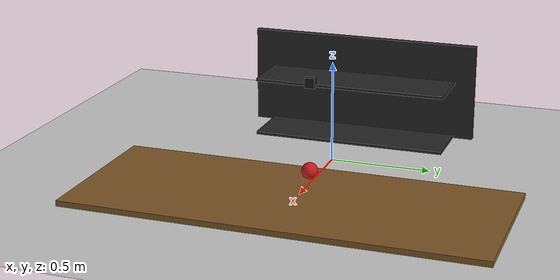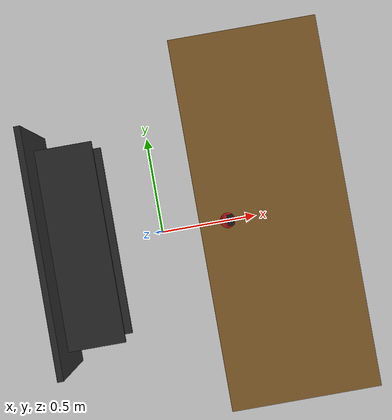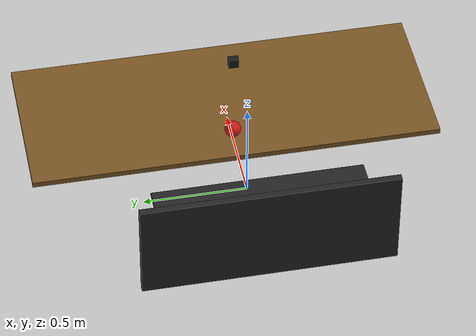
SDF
<sdf version='1.12'>
  <world name='empty'>
    <physics name='1ms' type='ignored'>
      <max_step_size>0.001</max_step_size>
      <real_time_factor>1</real_time_factor>
      <real_time_update_rate>1000</real_time_update_rate>
    </physics>
    <plugin name='gz::sim::systems::Physics' filename='gz-sim-physics-system'/>
    <plugin name='gz::sim::systems::UserCommands' filename='gz-sim-user-commands-system'/>
    <plugin name='gz::sim::systems::SceneBroadcaster' filename='gz-sim-scene-broadcaster-system'/>
    <plugin name='gz::sim::systems::Contact' filename='gz-sim-contact-system'/>
    <plugin name='gz::sim::systems::Sensors' filename='gz-sim-sensors-system'>
      <render_engine>ogre2</render_engine>
    </plugin>
    <gravity>0 0 -9.8000000000000007</gravity>
    <magnetic_field>5.5644999999999998e-06 2.2875799999999999e-05 -4.2388400000000002e-05</magnetic_field>
    <atmosphere type='adiabatic'/>
    <scene>
      <ambient>0.400000006 0.400000006 0.400000006 1</ambient>
      <background>0.699999988 0.699999988 0.699999988 1</background>
      <shadows>true</shadows>
    </scene>
    <model name='ground_plane'>
      <static>true</static>
      <link name='link'>
        <collision name='collision'>
          <geometry>
            <plane>
              <normal>0 0 1</normal>
              <size>100 100</size>
            </plane>
          </geometry>
          <surface>
            <friction>
              <ode/>
            </friction>
            <bounce/>
            <contact/>
          </surface>
        </collision>
        <visual name='visual'>
          <geometry>
            <plane>
              <normal>0 0 1</normal>
              <size>100 100</size>
            </plane>
          </geometry>
          <material>
            <ambient>0.800000012 0.800000012 0.800000012 1</ambient>
            <diffuse>0.800000012 0.800000012 0.800000012 1</diffuse>
            <specular>0.800000012 0.800000012 0.800000012 1</specular>
          </material>
        </visual>
        <pose>0 0 0 0 0 0</pose>
        <inertial>
          <pose>0 0 0 0 0 0</pose>
          <mass>1</mass>
          <inertia>
            <ixx>1</ixx>
            <ixy>0</ixy>
            <ixz>0</ixz>
            <iyy>1</iyy>
            <iyz>0</iyz>
            <izz>1</izz>
          </inertia>
        </inertial>
        <enable_wind>false</enable_wind>
      </link>
      <pose>0 0 0 0 0 0</pose>
      <self_collide>false</self_collide>
    </model>
    <light name='sun' type='directional'>
      <pose>0 0 10 0 0 0</pose>
      <cast_shadows>true</cast_shadows>
      <intensity>1</intensity>
      <direction>-0.5 0.10000000000000001 -0.90000000000000002</direction>
      <diffuse>0.800000012 0.800000012 0.800000012 1</diffuse>
      <specular>0.200000003 0.200000003 0.200000003 1</specular>
      <attenuation>
        <range>1000</range>
        <linear>0.01</linear>
        <constant>0.90000000000000002</constant>
        <quadratic>0.001</quadratic>
      </attenuation>
      <spot>
        <inner_angle>0</inner_angle>
        <outer_angle>0</outer_angle>
        <falloff>0</falloff>
      </spot>
    </light>
    <model name='table'>
      <static>true</static>
      <pose>0.6 0 0 0 0 0</pose>
      <link name="tabletop">
        <pose>0 0 0 0 0 0</pose>
        <collision name="collision">
          <geometry>
            <box>
              <size>0.8 2 0.05</size>
            </box>
          </geometry>
        </collision>
        <visual name="visual">
          <geometry>
            <box>
              <size>0.8 2 0.05</size>
            </box>
          </geometry>
          <material>
            <ambient>0.5 0.35 0.15 1</ambient>
            <diffuse>0.5 0.35 0.15 1</diffuse>
          </material>
        </visual>
      </link>
    </model>
    <model name="apple">
      <static>false</static>
      <pose>0.35 0 0.065 0 0 0</pose>
      <link name="apple_link">
        <collision name="collision">
          <geometry>
            <sphere>
              <radius>0.04</radius>
            </sphere>
          </geometry>
        </collision>
        <visual name="visual">
          <geometry>
            <sphere>
              <radius>0.04</radius>
            </sphere>
          </geometry>
          <material>
            <ambient>0.8 0.1 0.1 1</ambient>
            <diffuse>0.8 0.1 0.1 1</diffuse>
          </material>
        </visual>
        <inertial>
          <mass>0.15</mass>
          <inertia>
            <ixx>0.000096</ixx>
            <iyy>0.000096</iyy>
            <izz>0.000096</izz>
            <ixy>0</ixy>
            <ixz>0</ixz>
            <iyz>0</iyz>
          </inertia>
        </inertial>
      </link>
    </model>

    <model name='shelf'>
      <static>true</static>

      <!-- Model origin is at floor level, centered on the shelf -->
      <!-- TO MOVE THE SHELF: edit x (forward/back) and y (left/right) here -->
      <pose>-0.55 0 0 0 0 0</pose>

      <!-- BACK PANEL — the tall vertical back wall of the shelf -->
      <!-- TO ADJUST: change size to make it wider (y), taller (z), or thicker (x) -->
      <link name='back_panel'>
        <!-- z=0.125 centers the panel vertically (panel is 0.25m tall, so center is at 0.125m) -->
        <!-- TO ADJUST HEIGHT: change z here to half of whatever the panel height is -->
        <pose>0 0 0.25 0 0 0</pose>
        <collision name='collision'>
          <geometry>
            <!-- size: depth(x)=0.03m  width(y)=1.0m  height(z)=0.25m -->
            <!-- TO MAKE WIDER: increase the second number -->
            <!-- TO MAKE TALLER: increase the third number (and update the pose z above) -->
            <box><size>0.03 1.0 0.5</size></box>
          </geometry>
        </collision>
        <visual name='visual'>
          <geometry>
            <box><size>0.03 1.2 0.5</size></box>
          </geometry>
          <!-- Light grey color to suggest a fridge interior -->
          <!-- TO CHANGE COLOR: edit R G B values (each 0.0–1.0) -->
          <material>
            <ambient>0.15 0.15 0.15 1</ambient>
            <diffuse>0.15 0.15 0.15 1</diffuse>
          </material>
        </visual>
      </link>

      <!-- BOTTOM SHELF BOARD — sits on the floor -->
      <link name='shelf_board_bottom'>
        <!-- z=0.0075 = half the thickness, so the board sits flush on the floor -->
        <pose>0.15 0 0.0075 0 0 0</pose>
        <collision name='collision'>
          <geometry>
            <!-- size: depth(x)=0.3m  width(y)=1.0m  thickness(z)=0.015m -->
            <!-- TO MAKE DEEPER (more room front-to-back): increase the first number -->
            <box><size>0.3 1.0 0.015</size></box>
          </geometry>
        </collision>
        <visual name='visual'>
          <geometry>
            <box><size>0.3 1.0 0.015</size></box>
          </geometry>
          <material>
            <ambient>0.15 0.15 0.15 1</ambient>
            <diffuse>0.15 0.15 0.15 1</diffuse>
          </material>
        </visual>
      </link>

      <!-- MIDDLE SHELF BOARD -->
      <link name='shelf_board_middle'>
        <pose>0.15 0 0.3 0 0 0</pose>
        <collision name='collision'>
          <geometry>
            <box><size>0.3 1.0 0.015</size></box>
          </geometry>
        </collision>
        <visual name='visual'>
          <geometry>
            <box><size>0.3 1.0 0.015</size></box>
          </geometry>
          <material>
            <ambient>0.15 0.15 0.15 1</ambient>
            <diffuse>0.15 0.15 0.15 1</diffuse>
          </material>
        </visual>
      </link>

    </model>

    <model name='overhead_camera'>
      <static>true</static>
      <!-- x=0.35 centers over the table work area; z=1.2 gives a wide field of view -->
      <pose>0.35 0 0.5 3.1416 1.5708 0</pose>
      <link name='overhead_camera_link'>
        <!-- Small box representing the camera body -->
        <visual name='visual'>
          <geometry>
            <box><size>0.05 0.05 0.03</size></box>
          </geometry>
          <material>
            <ambient>0.1 0.1 0.1 1</ambient>
            <diffuse>0.1 0.1 0.1 1</diffuse>
          </material>
        </visual>
        <!-- No collision — the camera is a sensor-only object -->

        <!-- RGB camera — color image of the table surface -->
        <sensor name='overhead_rgb_camera' type='camera'>
          <always_on>1</always_on>
          <update_rate>30</update_rate>
          <camera name='overhead_camera'>
            <horizontal_fov>1.047</horizontal_fov>
            <image>
              <width>640</width>
              <height>480</height>
              <format>RGB_INT8</format>
            </image>
            <clip>
              <near>0.01</near>
              <far>5.0</far>
            </clip>
          </camera>
          <topic>/overhead_camera/image_raw</topic>
        </sensor>

        <!-- Depth camera — 3D point cloud of the table surface -->
        <sensor name='overhead_depth_camera' type='rgbd_camera'>
          <always_on>1</always_on>
          <update_rate>30</update_rate>
          <camera name='overhead_depth'>
            <horizontal_fov>1.047</horizontal_fov>
            <image>
              <width>640</width>
              <height>480</height>
              <format>RGB_INT8</format>
            </image>
            <clip>
              <near>0.01</near>
              <far>5.0</far>
            </clip>
          </camera>
          <topic>/overhead_depth_camera</topic>
        </sensor>
      </link>
    </model>

  </world>
</sdf>
